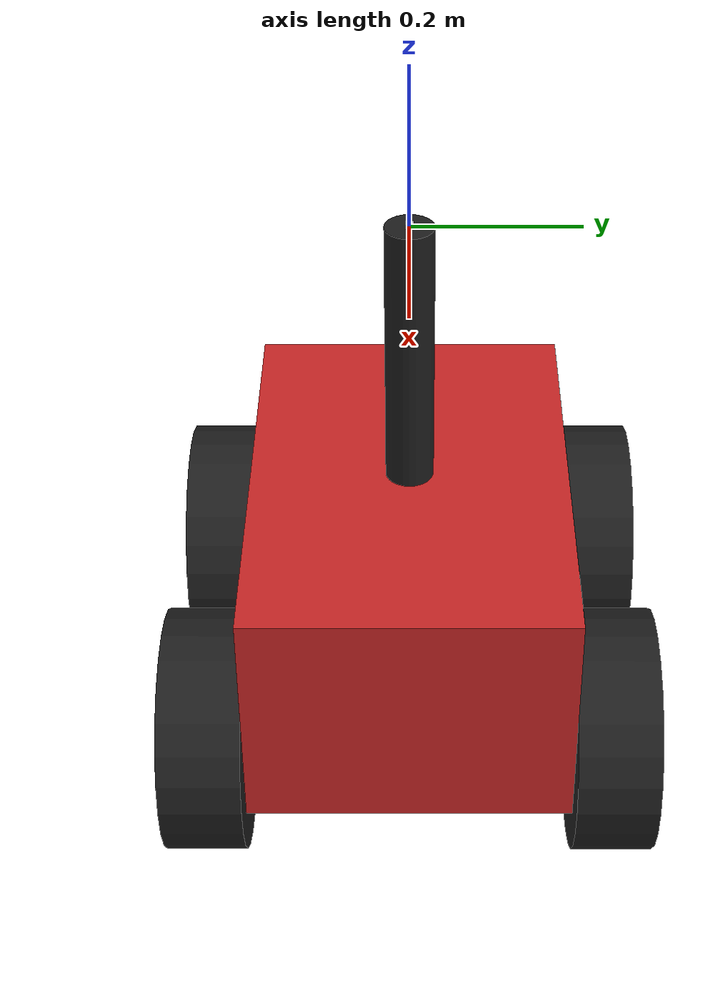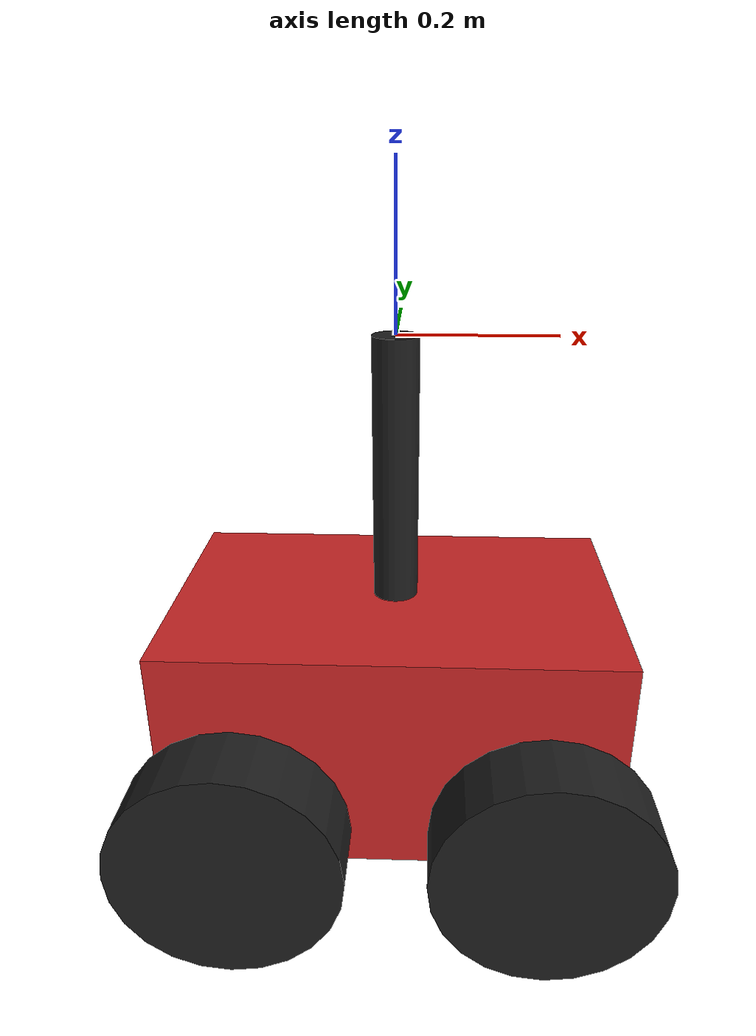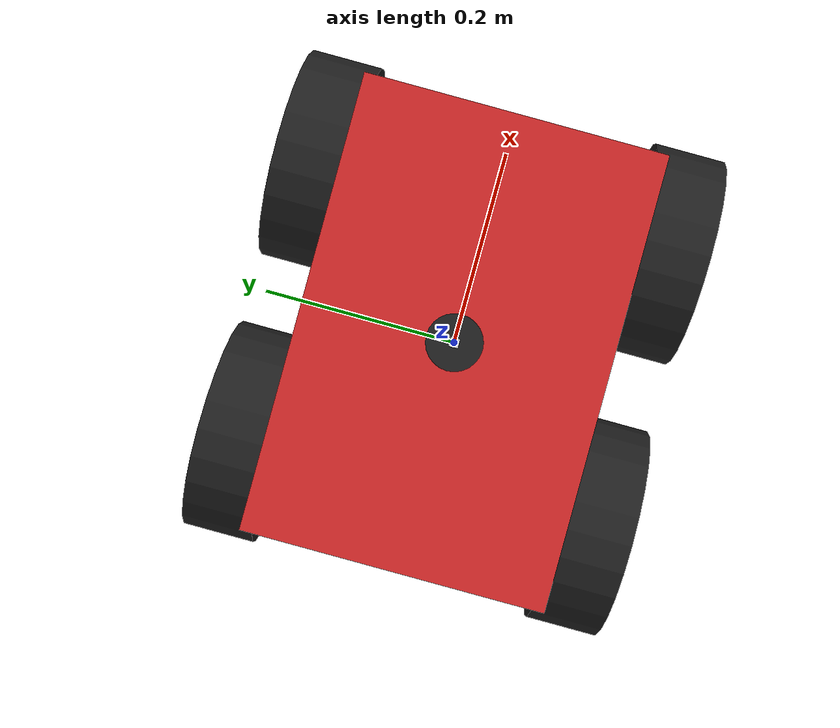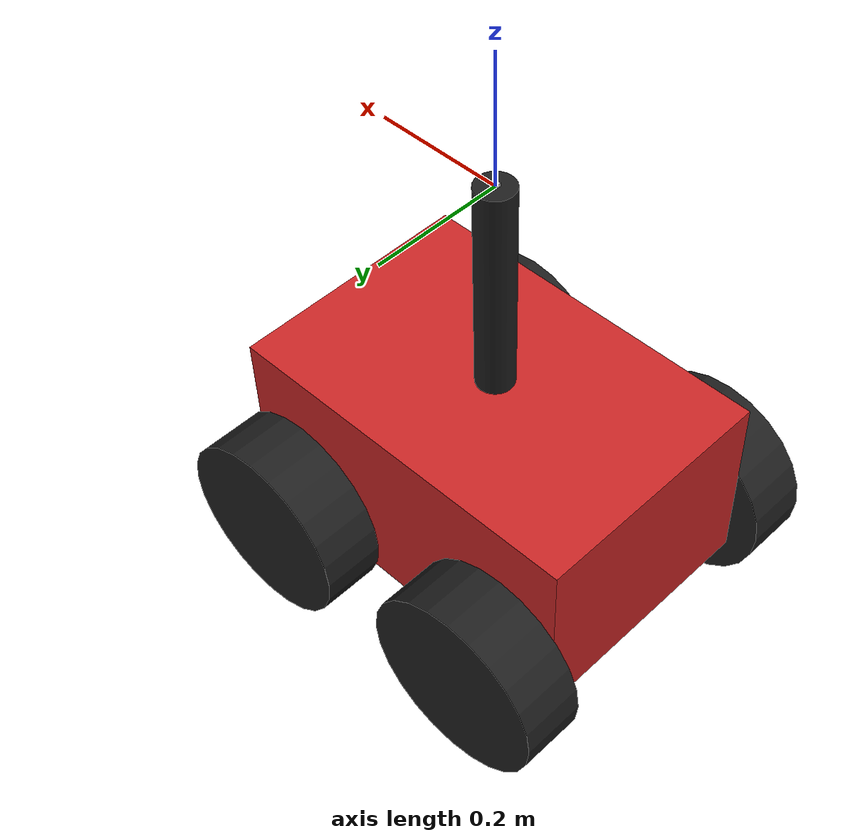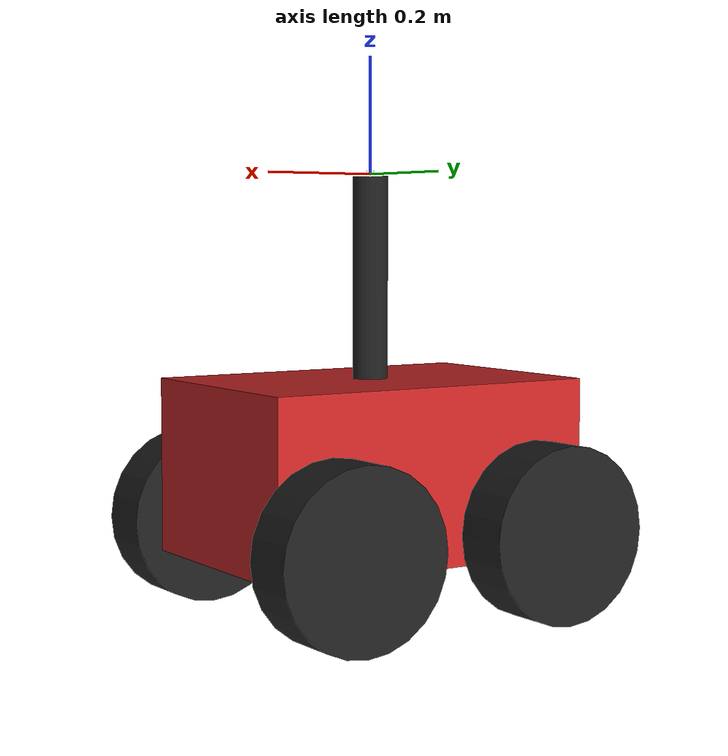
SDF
<sdf version='1.7'>
  <model name='example'>
    <static>0</static>
    <link name='base_origin'>
      <inertial>
        <pose>0 0 -0.5 0 0 0</pose>
        <mass>20.0</mass>
        <inertia>
          <ixx>0.5667</ixx>
          <ixy>0</ixy>
          <ixz>0</ixz>
          <iyy>0.7500</iyy>
          <iyz>0</iyz>
          <izz>1.0167</izz>
        </inertia>
      </inertial>
      <collision name='base_link_collision'>
        <pose>0 0 -0.5 0 0 0</pose>
        <geometry>
          <box>
            <size>0.6 0.4 0.3</size>
          </box>
        </geometry>
        <surface>
          <friction>
            <ode>
              <mu>0.8</mu>
              <mu2>0.8</mu2>
            </ode>
          </friction>
          <contact>
            <ode>
              <kp>1000000</kp>
              <kd>1</kd>
              <max_vel>0.1</max_vel>
              <min_depth>0.001</min_depth>
            </ode>
          </contact>
        </surface>
        <max_contacts>20</max_contacts>
      </collision>
      <collision name='left_front_wheel_collision'>
        <pose>0.2 -0.25 -0.6 1.5708 0 0</pose>
        <geometry>
          <cylinder>
            <length>0.1</length>
            <radius>0.15</radius>
          </cylinder>
        </geometry>
        <surface>
          <friction>
            <ode>
              <mu>1.2</mu>
              <mu2>1.2</mu2>
              <slip1>0.01</slip1>
              <slip2>0.01</slip2>
            </ode>
          </friction>
          <contact>
            <ode>
              <kp>1000000</kp>
              <kd>1</kd>
              <max_vel>0.1</max_vel>
              <min_depth>0.001</min_depth>
            </ode>
          </contact>
        </surface>
        <max_contacts>20</max_contacts>
      </collision>
      <collision name='left_rear_wheel_collision'>
        <pose>-0.2 -0.25 -0.6 1.5708 0 0</pose>
        <geometry>
          <cylinder>
            <length>0.1</length>
            <radius>0.15</radius>
          </cylinder>
        </geometry>
        <surface>
          <friction>
            <ode>
              <mu>1.2</mu>
              <mu2>1.2</mu2>
              <slip1>0.01</slip1>
              <slip2>0.01</slip2>
            </ode>
          </friction>
          <contact>
            <ode>
              <kp>1000000</kp>
              <kd>1</kd>
              <max_vel>0.1</max_vel>
              <min_depth>0.001</min_depth>
            </ode>
          </contact>
        </surface>
        <max_contacts>20</max_contacts>
      </collision>
      <collision name='right_rear_wheel_collision'>
        <pose>-0.2 0.25 -0.6 -1.5708 0 0</pose>
        <geometry>
          <cylinder>
            <length>0.1</length>
            <radius>0.15</radius>
          </cylinder>
        </geometry>
        <surface>
          <friction>
            <ode>
              <mu>1.2</mu>
              <mu2>1.2</mu2>
              <slip1>0.01</slip1>
              <slip2>0.01</slip2>
            </ode>
          </friction>
          <contact>
            <ode>
              <kp>1000000</kp>
              <kd>1</kd>
              <max_vel>0.1</max_vel>
              <min_depth>0.001</min_depth>
            </ode>
          </contact>
        </surface>
        <max_contacts>20</max_contacts>
      </collision>
      <collision name='right_front_wheel_collision'>
        <pose>0.2 0.25 -0.6 -1.5708 0 0</pose>
        <geometry>
          <cylinder>
            <length>0.1</length>
            <radius>0.15</radius>
          </cylinder>
        </geometry>
        <surface>
          <friction>
            <ode>
              <mu>1.2</mu>
              <mu2>1.2</mu2>
              <slip1>0.01</slip1>
              <slip2>0.01</slip2>
            </ode>
          </friction>
          <contact>
            <ode>
              <kp>1000000</kp>
              <kd>1</kd>
              <max_vel>0.1</max_vel>
              <min_depth>0.001</min_depth>
            </ode>
          </contact>
        </surface>
        <max_contacts>20</max_contacts>
      </collision>
      <visual name='base_origin_visual'>
        <pose>0 0 0 0 0 0</pose>
        <geometry>
          <box>
            <size>0.01 0.01 0.01</size>
          </box>
        </geometry>
      </visual>
      <visual name='base_origin_fixed_joint_lump__base_link_visual_1'>
        <pose>0 0 -0.5 0 0 0</pose>
        <geometry>
          <box>
            <size>0.6 0.4 0.3</size>
          </box>
        </geometry>
        <material>
          <script>
            <name>Gazebo/Red</name>
            <uri>file://media/materials/scripts/gazebo.material</uri>
          </script>
        </material>
      </visual>
      <visual name='base_origin_fixed_joint_lump__left_front_wheel_visual_2'>
        <pose>0.2 -0.25 -0.6 1.57 0 0</pose>
        <geometry>
          <cylinder>
            <length>0.1</length>
            <radius>0.15</radius>
          </cylinder>
        </geometry>
        <material>
          <script>
            <name>Gazebo/Black</name>
            <uri>file://media/materials/scripts/gazebo.material</uri>
          </script>
        </material>
      </visual>
      <visual name='base_origin_fixed_joint_lump__left_rear_wheel_visual_3'>
        <pose>-0.2 -0.25 -0.6 1.57 0 0</pose>
        <geometry>
          <cylinder>
            <length>0.1</length>
            <radius>0.15</radius>
          </cylinder>
        </geometry>
        <material>
          <script>
            <name>Gazebo/Black</name>
            <uri>file://media/materials/scripts/gazebo.material</uri>
          </script>
        </material>
      </visual>
      <visual name='base_origin_fixed_joint_lump__right_rear_wheel_visual_4'>
        <pose>-0.2 0.25 -0.6 -1.57 0 0</pose>
        <geometry>
          <cylinder>
            <length>0.1</length>
            <radius>0.15</radius>
          </cylinder>
        </geometry>
        <material>
          <script>
            <name>Gazebo/Black</name>
            <uri>file://media/materials/scripts/gazebo.material</uri>
          </script>
        </material>
      </visual>
      <visual name='base_origin_fixed_joint_lump__right_front_wheel_visual_5'>
        <pose>0.2 0.25 -0.6 -1.57 0 0</pose>
        <geometry>
          <cylinder>
            <length>0.1</length>
            <radius>0.15</radius>
          </cylinder>
        </geometry>
        <material>
          <script>
            <name>Gazebo/Black</name>
            <uri>file://media/materials/scripts/gazebo.material</uri>
          </script>
        </material>
      </visual>
      <visual name='base_origin_fixed_joint_lump__lidar_holder_visual_6'>
        <pose>0 0 -0.175 0 0 0</pose>
        <geometry>
          <cylinder>
            <length>0.35</length>
            <radius>0.03</radius>
          </cylinder>
        </geometry>
        <material>
          <script>
            <name>Gazebo/Black</name>
            <uri>file://media/materials/scripts/gazebo.material</uri>
          </script>
        </material>
      </visual>
      <self_collide>0</self_collide>
      <enable_wind>0</enable_wind>
      <kinematic>0</kinematic>
    </link>
  </model>
</sdf>
